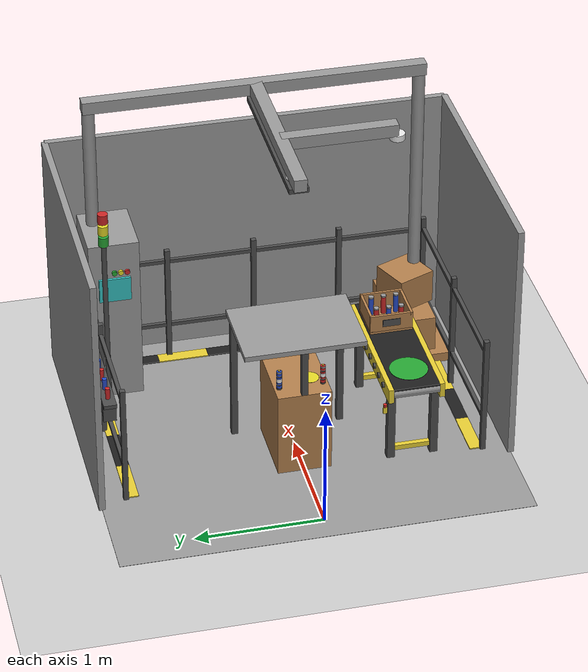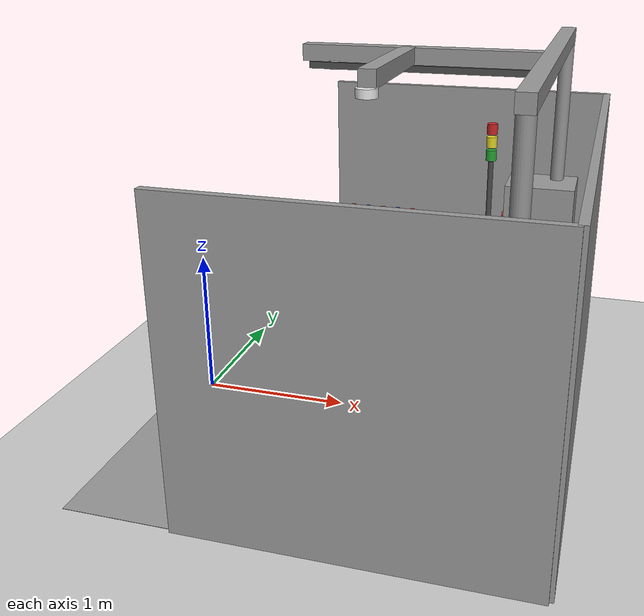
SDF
<?xml version="1.0" ?>
<sdf version="1.4">
  <world name="bimanual_manipulation_world">

    <physics type="ode">
      <gravity>0 0 -9.81</gravity>
      <ode>
        <solver>
          <type>quick</type>
          <iters>150</iters>
          <sor>1.3</sor>
        </solver>
        <constraints>
          <cfm>0.0</cfm>
          <erp>0.5</erp>
          <contact_max_correcting_vel>2.0</contact_max_correcting_vel>
          <contact_surface_layer>0.001</contact_surface_layer>
        </constraints>
      </ode>
      <real_time_update_rate>1000</real_time_update_rate>
      <max_step_size>0.001</max_step_size>
    </physics>

    <gui fullscreen="0">
      <camera name="user_camera">
        <pose>-1.50 0.00 1.85 0 0.41 0.00</pose>
        <view_controller>orbit</view_controller>
      </camera>
    </gui>

    <plugin name="ros2_linkattacher" filename="libgazebo_link_attacher.so"/>

    <!-- Standard illumination and ground -->
    <include><uri>model://sun</uri></include>
    <include><uri>model://ground_plane</uri></include>

    <model name="work_table">
      <static>true</static>
      <pose>0.940 0.0 0.35 0 0 0</pose>
      <link name="link">
        <collision name="col">
          <geometry><box><size>0.6 0.42 0.7</size></box></geometry>
          <surface>
            <contact>
              <ode>
                <kp>1000000</kp>
                <kd>100</kd>
                <max_vel>0.5</max_vel>
                <min_depth>0.001</min_depth>
              </ode>
            </contact>
            <friction><ode><mu>0.8</mu><mu2>0.8</mu2></ode></friction>
          </surface>
        </collision>
        <visual name="vis">
          <geometry><box><size>0.6 0.42 0.7</size></box></geometry>
          <material>
            <script>
              <uri>file://media/materials/scripts/gazebo.material</uri>
              <name>Gazebo/Wood</name>
            </script>
          </material>
        </visual>
      </link>
    </model>

    <model name="placement_area">
      <static>true</static>
      <pose>0.86 -0.09 0.701 0 0 0</pose>
      <link name="link">
        <visual name="vis">
          <geometry><cylinder><radius>0.07</radius><length>0.002</length></cylinder></geometry>
          <material><script><uri>file://media/materials/scripts/gazebo.material</uri><name>Gazebo/Yellow</name></script></material>
        </visual>
      </link>
    </model>

    <!-- FINAL platform (green): sits on the conveyor belt, inside its
         [-1.03,-0.67] width with a 0.03 m margin each side, 0.25 m from the
         belt's near edge. -->
    <model name="placement_area_final">
      <static>true</static>
      <pose>0.800 -0.85 0.701 0 0 0</pose>
      <link name="link">
        <visual name="vis">
          <geometry><cylinder><radius>0.15</radius><length>0.002</length></cylinder></geometry>
          <material><script><uri>file://media/materials/scripts/gazebo.material</uri><name>Gazebo/Green</name></script></material>
        </visual>
      </link>
    </model>

    <model name="red_cylinder">
      <static>false</static>
      <pose>0.770 -0.17 0.780 0 0 0</pose>
      <link name="link">
        <inertial>
          <pose>0 0 0 0 0 0</pose>
          <mass>0.15</mass>
          <inertia>
            <ixx>0.000309</ixx>
            <iyy>0.000309</iyy>
            <izz>0.000030</izz>
            <ixy>0</ixy><ixz>0</ixz><iyz>0</iyz>
          </inertia>
        </inertial>
        <collision name="col">
          <geometry><cylinder><radius>0.02</radius><length>0.16</length></cylinder></geometry>
          <surface>
            <contact>
              <ode>
                <soft_cfm>0.0</soft_cfm>
                <soft_erp>0.5</soft_erp>
                <kp>20000</kp>
                <kd>50</kd>
                <max_vel>1.0</max_vel>
                <min_depth>0.001</min_depth>
              </ode>
            </contact>
            <friction><ode><mu>0.6</mu><mu2>0.6</mu2></ode></friction>
          </surface>
        </collision>
        <visual name="vis">
          <geometry><cylinder><radius>0.02</radius><length>0.16</length></cylinder></geometry>
          <material><script><uri>file://media/materials/scripts/gazebo.material</uri><name>Gazebo/Red</name></script></material>
        </visual>

        <visual name="cap_top">
          <pose>0 0 0.0725 0 0 0</pose>
          <geometry><cylinder><radius>0.0205</radius><length>0.0149</length></cylinder></geometry>
          <material><script><uri>file://media/materials/scripts/gazebo.material</uri><name>Gazebo/Grey</name></script></material>
        </visual>
        <visual name="terminal_nub">
          <pose>0 0 0.0843 0 0 0</pose>
          <geometry><cylinder><radius>0.008</radius><length>0.0085</length></cylinder></geometry>
          <material><script><uri>file://media/materials/scripts/gazebo.material</uri><name>Gazebo/Gold</name></script></material>
        </visual>
        <visual name="cap_bottom">
          <pose>0 0 -0.0736 0 0 0</pose>
          <geometry><cylinder><radius>0.0205</radius><length>0.0128</length></cylinder></geometry>
          <material><script><uri>file://media/materials/scripts/gazebo.material</uri><name>Gazebo/DarkGrey</name></script></material>
        </visual>
        <visual name="label_band_top">
          <pose>0 0 0.0373 0 0 0</pose>
          <geometry><cylinder><radius>0.0206</radius><length>0.0107</length></cylinder></geometry>
          <material><script><uri>file://media/materials/scripts/gazebo.material</uri><name>Gazebo/FlatBlack</name></script></material>
        </visual>
        <visual name="label_band_bottom">
          <pose>0 0 -0.0373 0 0 0</pose>
          <geometry><cylinder><radius>0.0206</radius><length>0.0107</length></cylinder></geometry>
          <material><script><uri>file://media/materials/scripts/gazebo.material</uri><name>Gazebo/FlatBlack</name></script></material>
        </visual>
        <visual name="label_patch">
          <pose>0 0 0.0 0 0 0</pose>
          <geometry><cylinder><radius>0.0207</radius><length>0.0320</length></cylinder></geometry>
          <material><script><uri>file://media/materials/scripts/gazebo.material</uri><name>Gazebo/White</name></script></material>
        </visual>
      </link>
    </model>

    <model name="blue_cylinder">
      <static>false</static>
      <pose>0.770 0.17 0.780 0 0 0</pose>
      <link name="link">
        <inertial>
          <pose>0 0 0 0 0 0</pose>
          <mass>0.15</mass>
          <inertia>
            <ixx>0.000309</ixx>
            <iyy>0.000309</iyy>
            <izz>0.000030</izz>
            <ixy>0</ixy><ixz>0</ixz><iyz>0</iyz>
          </inertia>
        </inertial>
        <collision name="col">
          <geometry><cylinder><radius>0.02</radius><length>0.16</length></cylinder></geometry>
          <surface>
            <contact>
              <ode>
                <soft_cfm>0.0</soft_cfm>
                <soft_erp>0.5</soft_erp>
                <kp>20000</kp>
                <kd>50</kd>
                <max_vel>1.0</max_vel>
                <min_depth>0.001</min_depth>
              </ode>
            </contact>
            <friction><ode><mu>0.6</mu><mu2>0.6</mu2></ode></friction>
          </surface>
        </collision>
        <visual name="vis">
          <geometry><cylinder><radius>0.02</radius><length>0.16</length></cylinder></geometry>
          <material><script><uri>file://media/materials/scripts/gazebo.material</uri><name>Gazebo/Blue</name></script></material>
        </visual>

        <!-- Battery-look details (visual only): same accent styling as
             red_cylinder; only the body color differs. -->
        <visual name="cap_top">
          <pose>0 0 0.0725 0 0 0</pose>
          <geometry><cylinder><radius>0.0205</radius><length>0.0149</length></cylinder></geometry>
          <material><script><uri>file://media/materials/scripts/gazebo.material</uri><name>Gazebo/Grey</name></script></material>
        </visual>
        <visual name="terminal_nub">
          <pose>0 0 0.0843 0 0 0</pose>
          <geometry><cylinder><radius>0.008</radius><length>0.0085</length></cylinder></geometry>
          <material><script><uri>file://media/materials/scripts/gazebo.material</uri><name>Gazebo/Gold</name></script></material>
        </visual>
        <visual name="cap_bottom">
          <pose>0 0 -0.0736 0 0 0</pose>
          <geometry><cylinder><radius>0.0205</radius><length>0.0128</length></cylinder></geometry>
          <material><script><uri>file://media/materials/scripts/gazebo.material</uri><name>Gazebo/DarkGrey</name></script></material>
        </visual>
        <visual name="label_band_top">
          <pose>0 0 0.0373 0 0 0</pose>
          <geometry><cylinder><radius>0.0206</radius><length>0.0107</length></cylinder></geometry>
          <material><script><uri>file://media/materials/scripts/gazebo.material</uri><name>Gazebo/FlatBlack</name></script></material>
        </visual>
        <visual name="label_band_bottom">
          <pose>0 0 -0.0373 0 0 0</pose>
          <geometry><cylinder><radius>0.0206</radius><length>0.0107</length></cylinder></geometry>
          <material><script><uri>file://media/materials/scripts/gazebo.material</uri><name>Gazebo/FlatBlack</name></script></material>
        </visual>
        <visual name="label_patch">
          <pose>0 0 0.0 0 0 0</pose>
          <geometry><cylinder><radius>0.0207</radius><length>0.0320</length></cylinder></geometry>
          <material><script><uri>file://media/materials/scripts/gazebo.material</uri><name>Gazebo/White</name></script></material>
        </visual>
      </link>
    </model>

    <model name="storage_rack">
      <static>true</static>
      <pose>0 0 0 0 0 0</pose>
      <link name="link">

        <!-- Horizontal shelf (ceiling over the cylinders), underside at z=1.10 -->
        <collision name="shelf_col">
          <pose>0.94 0.0 1.12 0 0 0</pose>
          <geometry><box><size>0.66 0.94 0.04</size></box></geometry>
        </collision>
        <visual name="shelf_vis">
          <pose>0.94 0.0 1.12 0 0 0</pose>
          <geometry><box><size>0.66 0.94 0.04</size></box></geometry>
          <material><script><uri>file://media/materials/scripts/gazebo.material</uri><name>Gazebo/Grey</name></script></material>
        </visual>

        <collision name="leg_bl_col">
          <pose>1.24 -0.42 0.55 0 0 0</pose>
          <geometry><box><size>0.05 0.05 1.10</size></box></geometry>
        </collision>
        <visual name="leg_bl_vis">
          <pose>1.24 -0.42 0.55 0 0 0</pose>
          <geometry><box><size>0.05 0.05 1.10</size></box></geometry>
          <material><script><uri>file://media/materials/scripts/gazebo.material</uri><name>Gazebo/DarkGrey</name></script></material>
        </visual>

        <collision name="leg_br_col">
          <pose>1.24 0.42 0.55 0 0 0</pose>
          <geometry><box><size>0.05 0.05 1.10</size></box></geometry>
        </collision>
        <visual name="leg_br_vis">
          <pose>1.24 0.42 0.55 0 0 0</pose>
          <geometry><box><size>0.05 0.05 1.10</size></box></geometry>
          <material><script><uri>file://media/materials/scripts/gazebo.material</uri><name>Gazebo/DarkGrey</name></script></material>
        </visual>

        <collision name="leg_fc_col">
          <pose>0.665 0.0 0.90 0 0 0</pose>
          <geometry><box><size>0.05 0.05 0.40</size></box></geometry>
        </collision>
        <visual name="leg_fc_vis">
          <pose>0.665 0.0 0.90 0 0 0</pose>
          <geometry><box><size>0.05 0.05 0.40</size></box></geometry>
          <material><script><uri>file://media/materials/scripts/gazebo.material</uri><name>Gazebo/DarkGrey</name></script></material>
        </visual>

      </link>
    </model>

    <model name="conveyor">
      <static>true</static>
      <pose>0 0 0 0 0 0</pose>
      <link name="link">

        <collision name="col">
          <pose>1.15 -0.85 0.35 0 0 0</pose>
          <geometry><box><size>1.20 0.48 0.70</size></box></geometry>
          <surface>
            <contact>
              <ode>
                <kp>1000000</kp>
                <kd>100</kd>
                <max_vel>0.5</max_vel>
                <min_depth>0.001</min_depth>
              </ode>
            </contact>
            <friction><ode><mu>0.8</mu><mu2>0.8</mu2></ode></friction>
          </surface>
        </collision>

        <visual name="belt_slab">
          <pose>1.15 -0.85 0.690 0 0 0</pose>
          <geometry><box><size>1.20 0.36 0.02</size></box></geometry>
          <material><script><uri>file://media/materials/scripts/gazebo.material</uri><name>Gazebo/FlatBlack</name></script></material>
        </visual>

        <visual name="drum_near">
          <pose>0.585 -0.85 0.655 1.5708 0 0</pose>
          <geometry><cylinder><radius>0.045</radius><length>0.36</length></cylinder></geometry>
          <material><script><uri>file://media/materials/scripts/gazebo.material</uri><name>Gazebo/Grey</name></script></material>
        </visual>
        <visual name="drum_far">
          <pose>1.715 -0.85 0.655 1.5708 0 0</pose>
          <geometry><cylinder><radius>0.045</radius><length>0.36</length></cylinder></geometry>
          <material><script><uri>file://media/materials/scripts/gazebo.material</uri><name>Gazebo/Grey</name></script></material>
        </visual>

        <visual name="frame_near">
          <pose>1.15 -0.65 0.640 0 0 0</pose>
          <geometry><box><size>1.20 0.04 0.12</size></box></geometry>
          <material><script><uri>file://media/materials/scripts/gazebo.material</uri><name>Gazebo/ZincYellow</name></script></material>
        </visual>
        <visual name="frame_far">
          <pose>1.15 -1.05 0.640 0 0 0</pose>
          <geometry><box><size>1.20 0.04 0.12</size></box></geometry>
          <material><script><uri>file://media/materials/scripts/gazebo.material</uri><name>Gazebo/ZincYellow</name></script></material>
        </visual>

        <!-- Roller ends through the near frame (belt-side face), 8x spaced 0.13 m. -->
        <visual name="roller_1">
          <pose>0.70 -0.625 0.655 1.5708 0 0</pose>
          <geometry><cylinder><radius>0.022</radius><length>0.02</length></cylinder></geometry>
          <material><script><uri>file://media/materials/scripts/gazebo.material</uri><name>Gazebo/DarkGrey</name></script></material>
        </visual>
        <visual name="roller_2">
          <pose>0.83 -0.625 0.655 1.5708 0 0</pose>
          <geometry><cylinder><radius>0.022</radius><length>0.02</length></cylinder></geometry>
          <material><script><uri>file://media/materials/scripts/gazebo.material</uri><name>Gazebo/DarkGrey</name></script></material>
        </visual>
        <visual name="roller_3">
          <pose>0.96 -0.625 0.655 1.5708 0 0</pose>
          <geometry><cylinder><radius>0.022</radius><length>0.02</length></cylinder></geometry>
          <material><script><uri>file://media/materials/scripts/gazebo.material</uri><name>Gazebo/DarkGrey</name></script></material>
        </visual>
        <visual name="roller_4">
          <pose>1.09 -0.625 0.655 1.5708 0 0</pose>
          <geometry><cylinder><radius>0.022</radius><length>0.02</length></cylinder></geometry>
          <material><script><uri>file://media/materials/scripts/gazebo.material</uri><name>Gazebo/DarkGrey</name></script></material>
        </visual>
        <visual name="roller_5">
          <pose>1.22 -0.625 0.655 1.5708 0 0</pose>
          <geometry><cylinder><radius>0.022</radius><length>0.02</length></cylinder></geometry>
          <material><script><uri>file://media/materials/scripts/gazebo.material</uri><name>Gazebo/DarkGrey</name></script></material>
        </visual>
        <visual name="roller_6">
          <pose>1.35 -0.625 0.655 1.5708 0 0</pose>
          <geometry><cylinder><radius>0.022</radius><length>0.02</length></cylinder></geometry>
          <material><script><uri>file://media/materials/scripts/gazebo.material</uri><name>Gazebo/DarkGrey</name></script></material>
        </visual>
        <visual name="roller_7">
          <pose>1.48 -0.625 0.655 1.5708 0 0</pose>
          <geometry><cylinder><radius>0.022</radius><length>0.02</length></cylinder></geometry>
          <material><script><uri>file://media/materials/scripts/gazebo.material</uri><name>Gazebo/DarkGrey</name></script></material>
        </visual>
        <visual name="roller_8">
          <pose>1.61 -0.625 0.655 1.5708 0 0</pose>
          <geometry><cylinder><radius>0.022</radius><length>0.02</length></cylinder></geometry>
          <material><script><uri>file://media/materials/scripts/gazebo.material</uri><name>Gazebo/DarkGrey</name></script></material>
        </visual>

        <!-- 4 legs: top (z=0.58) flush with the side frames' underside. -->
        <visual name="leg_fl">
          <pose>0.67 -0.68 0.29 0 0 0</pose>
          <geometry><box><size>0.06 0.06 0.58</size></box></geometry>
          <material><script><uri>file://media/materials/scripts/gazebo.material</uri><name>Gazebo/DarkGrey</name></script></material>
        </visual>
        <visual name="leg_fr">
          <pose>0.67 -1.02 0.29 0 0 0</pose>
          <geometry><box><size>0.06 0.06 0.58</size></box></geometry>
          <material><script><uri>file://media/materials/scripts/gazebo.material</uri><name>Gazebo/DarkGrey</name></script></material>
        </visual>
        <visual name="leg_bl">
          <pose>1.63 -0.68 0.29 0 0 0</pose>
          <geometry><box><size>0.06 0.06 0.58</size></box></geometry>
          <material><script><uri>file://media/materials/scripts/gazebo.material</uri><name>Gazebo/DarkGrey</name></script></material>
        </visual>
        <visual name="leg_br">
          <pose>1.63 -1.02 0.29 0 0 0</pose>
          <geometry><box><size>0.06 0.06 0.58</size></box></geometry>
          <material><script><uri>file://media/materials/scripts/gazebo.material</uri><name>Gazebo/DarkGrey</name></script></material>
        </visual>

        <visual name="brace_near">
          <pose>0.67 -0.85 0.08 0 0 0</pose>
          <geometry><box><size>0.04 0.36 0.04</size></box></geometry>
          <material><script><uri>file://media/materials/scripts/gazebo.material</uri><name>Gazebo/ZincYellow</name></script></material>
        </visual>
        <visual name="brace_far">
          <pose>1.63 -0.85 0.08 0 0 0</pose>
          <geometry><box><size>0.04 0.36 0.04</size></box></geometry>
          <material><script><uri>file://media/materials/scripts/gazebo.material</uri><name>Gazebo/ZincYellow</name></script></material>
        </visual>

        <visual name="motor_housing">
          <pose>1.65 -0.85 0.60 0 0 0</pose>
          <geometry><box><size>0.10 0.14 0.10</size></box></geometry>
          <material><script><uri>file://media/materials/scripts/gazebo.material</uri><name>Gazebo/DarkGrey</name></script></material>
        </visual>
        <visual name="motor_gearbox">
          <pose>1.58 -0.85 0.60 0 1.5708 0</pose>
          <geometry><cylinder><radius>0.05</radius><length>0.08</length></cylinder></geometry>
          <material><script><uri>file://media/materials/scripts/gazebo.material</uri><name>Gazebo/Grey</name></script></material>
        </visual>

        <visual name="estop_plate">
          <pose>0.67 -0.645 0.45 0 0 0</pose>
          <geometry><box><size>0.015 0.05 0.08</size></box></geometry>
          <material><script><uri>file://media/materials/scripts/gazebo.material</uri><name>Gazebo/ZincYellow</name></script></material>
        </visual>
        <visual name="estop_button">
          <pose>0.67 -0.635 0.48 0 0 0</pose>
          <geometry><cylinder><radius>0.015</radius><length>0.02</length></cylinder></geometry>
          <material><script><uri>file://media/materials/scripts/gazebo.material</uri><name>Gazebo/Red</name></script></material>
        </visual>

      </link>
    </model>

    <model name="battery_chest">
      <static>true</static>
      <pose>1.48 -0.85 0 0 0 0</pose>
      <link name="link">
        <visual name="chest_floor">
          <pose>0 0 0.710 0 0 0</pose>
          <geometry><box><size>0.34 0.34 0.02</size></box></geometry>
          <material><script><uri>file://media/materials/scripts/gazebo.material</uri><name>Gazebo/Wood</name></script></material>
        </visual>
        <visual name="wall_far">
          <pose>0.16 0 0.790 0 0 0</pose>
          <geometry><box><size>0.02 0.34 0.14</size></box></geometry>
          <material><script><uri>file://media/materials/scripts/gazebo.material</uri><name>Gazebo/Wood</name></script></material>
        </visual>
        <visual name="wall_near">
          <pose>-0.16 0 0.790 0 0 0</pose>
          <geometry><box><size>0.02 0.34 0.14</size></box></geometry>
          <material><script><uri>file://media/materials/scripts/gazebo.material</uri><name>Gazebo/Wood</name></script></material>
        </visual>
        <visual name="wall_outer">
          <pose>0 -0.16 0.790 0 0 0</pose>
          <geometry><box><size>0.34 0.02 0.14</size></box></geometry>
          <material><script><uri>file://media/materials/scripts/gazebo.material</uri><name>Gazebo/Wood</name></script></material>
        </visual>
        <visual name="wall_inner">
          <pose>0 0.16 0.790 0 0 0</pose>
          <geometry><box><size>0.34 0.02 0.14</size></box></geometry>
          <material><script><uri>file://media/materials/scripts/gazebo.material</uri><name>Gazebo/Wood</name></script></material>
        </visual>

        <!-- Generic stock placard: mixed batteries, no single line to color-code. -->
        <visual name="label_plate">
          <pose>-0.172 0 0.790 0 0 0</pose>
          <geometry><box><size>0.005 0.14 0.06</size></box></geometry>
          <material><script><uri>file://media/materials/scripts/gazebo.material</uri><name>Gazebo/DarkGrey</name></script></material>
        </visual>

        <!-- Stock: 3 red + 3 blue batteries standing on the crate floor, tops
             peeking just above the 0.14 m rim. -->
        <visual name="battery_1"><pose>-0.08 -0.10 0.795 0 0 0</pose><geometry><cylinder><radius>0.02</radius><length>0.15</length></cylinder></geometry><material><script><uri>file://media/materials/scripts/gazebo.material</uri><name>Gazebo/Red</name></script></material></visual>
        <visual name="battery_1_cap"><pose>-0.08 -0.10 0.876 0 0 0</pose><geometry><cylinder><radius>0.021</radius><length>0.012</length></cylinder></geometry><material><script><uri>file://media/materials/scripts/gazebo.material</uri><name>Gazebo/Grey</name></script></material></visual>
        <visual name="battery_2"><pose>-0.08 0.00 0.795 0 0 0</pose><geometry><cylinder><radius>0.02</radius><length>0.15</length></cylinder></geometry><material><script><uri>file://media/materials/scripts/gazebo.material</uri><name>Gazebo/Blue</name></script></material></visual>
        <visual name="battery_2_cap"><pose>-0.08 0.00 0.876 0 0 0</pose><geometry><cylinder><radius>0.021</radius><length>0.012</length></cylinder></geometry><material><script><uri>file://media/materials/scripts/gazebo.material</uri><name>Gazebo/Grey</name></script></material></visual>
        <visual name="battery_3"><pose>-0.08 0.10 0.795 0 0 0</pose><geometry><cylinder><radius>0.02</radius><length>0.15</length></cylinder></geometry><material><script><uri>file://media/materials/scripts/gazebo.material</uri><name>Gazebo/Red</name></script></material></visual>
        <visual name="battery_3_cap"><pose>-0.08 0.10 0.876 0 0 0</pose><geometry><cylinder><radius>0.021</radius><length>0.012</length></cylinder></geometry><material><script><uri>file://media/materials/scripts/gazebo.material</uri><name>Gazebo/Grey</name></script></material></visual>
        <visual name="battery_4"><pose>0.08 -0.10 0.795 0 0 0</pose><geometry><cylinder><radius>0.02</radius><length>0.15</length></cylinder></geometry><material><script><uri>file://media/materials/scripts/gazebo.material</uri><name>Gazebo/Blue</name></script></material></visual>
        <visual name="battery_4_cap"><pose>0.08 -0.10 0.876 0 0 0</pose><geometry><cylinder><radius>0.021</radius><length>0.012</length></cylinder></geometry><material><script><uri>file://media/materials/scripts/gazebo.material</uri><name>Gazebo/Grey</name></script></material></visual>
        <visual name="battery_5"><pose>0.08 0.00 0.795 0 0 0</pose><geometry><cylinder><radius>0.02</radius><length>0.15</length></cylinder></geometry><material><script><uri>file://media/materials/scripts/gazebo.material</uri><name>Gazebo/Red</name></script></material></visual>
        <visual name="battery_5_cap"><pose>0.08 0.00 0.876 0 0 0</pose><geometry><cylinder><radius>0.021</radius><length>0.012</length></cylinder></geometry><material><script><uri>file://media/materials/scripts/gazebo.material</uri><name>Gazebo/Grey</name></script></material></visual>
        <visual name="battery_6"><pose>0.08 0.10 0.795 0 0 0</pose><geometry><cylinder><radius>0.02</radius><length>0.15</length></cylinder></geometry><material><script><uri>file://media/materials/scripts/gazebo.material</uri><name>Gazebo/Blue</name></script></material></visual>
        <visual name="battery_6_cap"><pose>0.08 0.10 0.876 0 0 0</pose><geometry><cylinder><radius>0.021</radius><length>0.012</length></cylinder></geometry><material><script><uri>file://media/materials/scripts/gazebo.material</uri><name>Gazebo/Grey</name></script></material></visual>
      </link>
    </model>

    <model name="cell_floor">
      <static>true</static>
      <pose>1.2 0.0 0.001 0 0 0</pose>
      <link name="link">
        <visual name="vis">
          <geometry><box><size>2.8 3.2 0.002</size></box></geometry>
          <material><script><uri>file://media/materials/scripts/gazebo.material</uri><name>Gazebo/Grey</name></script></material>
        </visual>
      </link>
    </model>

    <!-- Hazard-stripe border along the fenced perimeter (back/left/right; the
         front stays open, matching the fence). -->
    <model name="cell_hazard_stripes">
      <static>true</static>
      <pose>0 0 0.006 0 0 0</pose>
      <link name="link">
        <visual name="back_1"><pose>2.35 -1.00 0 0 0 0</pose><geometry><box><size>0.10 0.40 0.01</size></box></geometry><material><script><uri>file://media/materials/scripts/gazebo.material</uri><name>Gazebo/ZincYellow</name></script></material></visual>
        <visual name="back_2"><pose>2.35 -0.60 0 0 0 0</pose><geometry><box><size>0.10 0.40 0.01</size></box></geometry><material><script><uri>file://media/materials/scripts/gazebo.material</uri><name>Gazebo/FlatBlack</name></script></material></visual>
        <visual name="back_3"><pose>2.35 -0.20 0 0 0 0</pose><geometry><box><size>0.10 0.40 0.01</size></box></geometry><material><script><uri>file://media/materials/scripts/gazebo.material</uri><name>Gazebo/ZincYellow</name></script></material></visual>
        <visual name="back_4"><pose>2.35 0.20 0 0 0 0</pose><geometry><box><size>0.10 0.40 0.01</size></box></geometry><material><script><uri>file://media/materials/scripts/gazebo.material</uri><name>Gazebo/FlatBlack</name></script></material></visual>
        <visual name="back_5"><pose>2.35 0.60 0 0 0 0</pose><geometry><box><size>0.10 0.40 0.01</size></box></geometry><material><script><uri>file://media/materials/scripts/gazebo.material</uri><name>Gazebo/ZincYellow</name></script></material></visual>
        <visual name="back_6"><pose>2.35 1.00 0 0 0 0</pose><geometry><box><size>0.10 0.40 0.01</size></box></geometry><material><script><uri>file://media/materials/scripts/gazebo.material</uri><name>Gazebo/FlatBlack</name></script></material></visual>

        <visual name="left_1"><pose>0.80 1.35 0 0 0 0</pose><geometry><box><size>0.40 0.10 0.01</size></box></geometry><material><script><uri>file://media/materials/scripts/gazebo.material</uri><name>Gazebo/ZincYellow</name></script></material></visual>
        <visual name="left_2"><pose>1.20 1.35 0 0 0 0</pose><geometry><box><size>0.40 0.10 0.01</size></box></geometry><material><script><uri>file://media/materials/scripts/gazebo.material</uri><name>Gazebo/FlatBlack</name></script></material></visual>
        <visual name="left_3"><pose>1.60 1.35 0 0 0 0</pose><geometry><box><size>0.40 0.10 0.01</size></box></geometry><material><script><uri>file://media/materials/scripts/gazebo.material</uri><name>Gazebo/ZincYellow</name></script></material></visual>
        <visual name="left_4"><pose>2.00 1.35 0 0 0 0</pose><geometry><box><size>0.40 0.10 0.01</size></box></geometry><material><script><uri>file://media/materials/scripts/gazebo.material</uri><name>Gazebo/FlatBlack</name></script></material></visual>

        <visual name="right_1"><pose>0.80 -1.35 0 0 0 0</pose><geometry><box><size>0.40 0.10 0.01</size></box></geometry><material><script><uri>file://media/materials/scripts/gazebo.material</uri><name>Gazebo/ZincYellow</name></script></material></visual>
        <visual name="right_2"><pose>1.20 -1.35 0 0 0 0</pose><geometry><box><size>0.40 0.10 0.01</size></box></geometry><material><script><uri>file://media/materials/scripts/gazebo.material</uri><name>Gazebo/FlatBlack</name></script></material></visual>
        <visual name="right_3"><pose>1.60 -1.35 0 0 0 0</pose><geometry><box><size>0.40 0.10 0.01</size></box></geometry><material><script><uri>file://media/materials/scripts/gazebo.material</uri><name>Gazebo/ZincYellow</name></script></material></visual>
        <visual name="right_4"><pose>2.00 -1.35 0 0 0 0</pose><geometry><box><size>0.40 0.10 0.01</size></box></geometry><material><script><uri>file://media/materials/scripts/gazebo.material</uri><name>Gazebo/FlatBlack</name></script></material></visual>
      </link>
    </model>

    <model name="safety_fence">
      <static>true</static>
      <pose>0 0 0.5 0 0 0</pose>
      <link name="link">
        <visual name="post_back_1"><pose>2.40 -1.40 0 0 0 0</pose><geometry><box><size>0.04 0.04 1.0</size></box></geometry><material><script><uri>file://media/materials/scripts/gazebo.material</uri><name>Gazebo/DarkGrey</name></script></material></visual>
        <visual name="post_back_2"><pose>2.40 -0.70 0 0 0 0</pose><geometry><box><size>0.04 0.04 1.0</size></box></geometry><material><script><uri>file://media/materials/scripts/gazebo.material</uri><name>Gazebo/DarkGrey</name></script></material></visual>
        <visual name="post_back_3"><pose>2.40 0.00 0 0 0 0</pose><geometry><box><size>0.04 0.04 1.0</size></box></geometry><material><script><uri>file://media/materials/scripts/gazebo.material</uri><name>Gazebo/DarkGrey</name></script></material></visual>
        <visual name="post_back_4"><pose>2.40 0.70 0 0 0 0</pose><geometry><box><size>0.04 0.04 1.0</size></box></geometry><material><script><uri>file://media/materials/scripts/gazebo.material</uri><name>Gazebo/DarkGrey</name></script></material></visual>
        <visual name="post_back_5"><pose>2.40 1.40 0 0 0 0</pose><geometry><box><size>0.04 0.04 1.0</size></box></geometry><material><script><uri>file://media/materials/scripts/gazebo.material</uri><name>Gazebo/DarkGrey</name></script></material></visual>
        <visual name="post_left_1"><pose>0.60 1.40 0 0 0 0</pose><geometry><box><size>0.04 0.04 1.0</size></box></geometry><material><script><uri>file://media/materials/scripts/gazebo.material</uri><name>Gazebo/DarkGrey</name></script></material></visual>
        <visual name="post_left_2"><pose>1.50 1.40 0 0 0 0</pose><geometry><box><size>0.04 0.04 1.0</size></box></geometry><material><script><uri>file://media/materials/scripts/gazebo.material</uri><name>Gazebo/DarkGrey</name></script></material></visual>
        <visual name="post_right_1"><pose>0.60 -1.40 0 0 0 0</pose><geometry><box><size>0.04 0.04 1.0</size></box></geometry><material><script><uri>file://media/materials/scripts/gazebo.material</uri><name>Gazebo/DarkGrey</name></script></material></visual>
        <visual name="post_right_2"><pose>1.50 -1.40 0 0 0 0</pose><geometry><box><size>0.04 0.04 1.0</size></box></geometry><material><script><uri>file://media/materials/scripts/gazebo.material</uri><name>Gazebo/DarkGrey</name></script></material></visual>

        <visual name="rail_back_top"><pose>2.40 0.0 0.4 0 0 0</pose><geometry><box><size>0.03 2.80 0.03</size></box></geometry><material><script><uri>file://media/materials/scripts/gazebo.material</uri><name>Gazebo/DarkGrey</name></script></material></visual>
        <visual name="rail_back_bottom"><pose>2.40 0.0 -0.2 0 0 0</pose><geometry><box><size>0.03 2.80 0.03</size></box></geometry><material><script><uri>file://media/materials/scripts/gazebo.material</uri><name>Gazebo/DarkGrey</name></script></material></visual>
        <visual name="rail_left_top"><pose>1.50 1.40 0.4 0 0 0</pose><geometry><box><size>1.80 0.03 0.03</size></box></geometry><material><script><uri>file://media/materials/scripts/gazebo.material</uri><name>Gazebo/DarkGrey</name></script></material></visual>
        <visual name="rail_left_bottom"><pose>1.50 1.40 -0.2 0 0 0</pose><geometry><box><size>1.80 0.03 0.03</size></box></geometry><material><script><uri>file://media/materials/scripts/gazebo.material</uri><name>Gazebo/DarkGrey</name></script></material></visual>
        <visual name="rail_right_top"><pose>1.50 -1.40 0.4 0 0 0</pose><geometry><box><size>1.80 0.03 0.03</size></box></geometry><material><script><uri>file://media/materials/scripts/gazebo.material</uri><name>Gazebo/DarkGrey</name></script></material></visual>
        <visual name="rail_right_bottom"><pose>1.50 -1.40 -0.2 0 0 0</pose><geometry><box><size>1.80 0.03 0.03</size></box></geometry><material><script><uri>file://media/materials/scripts/gazebo.material</uri><name>Gazebo/DarkGrey</name></script></material></visual>
      </link>
    </model>

    <model name="cell_walls">
      <static>true</static>
      <pose>0 0 1.0 0 0 0</pose>
      <link name="link">
        <visual name="wall_back"><pose>2.60 0.0 0 0 0 0</pose><geometry><box><size>0.05 3.2 2.0</size></box></geometry><material><script><uri>file://media/materials/scripts/gazebo.material</uri><name>Gazebo/Grey</name></script></material></visual>
        <visual name="wall_left"><pose>1.55 1.60 0 0 0 0</pose><geometry><box><size>2.10 0.05 2.0</size></box></geometry><material><script><uri>file://media/materials/scripts/gazebo.material</uri><name>Gazebo/Grey</name></script></material></visual>
        <visual name="wall_right"><pose>1.55 -1.60 0 0 0 0</pose><geometry><box><size>2.10 0.05 2.0</size></box></geometry><material><script><uri>file://media/materials/scripts/gazebo.material</uri><name>Gazebo/Grey</name></script></material></visual>
      </link>
    </model>

    <model name="overhead_gantry">
      <static>true</static>
      <pose>0 0 0 0 0 0</pose>
      <link name="link">
        <visual name="column_left">
          <pose>2.30 1.30 1.2 0 0 0</pose>
          <geometry><cylinder><radius>0.05</radius><length>2.4</length></cylinder></geometry>
          <material><script><uri>file://media/materials/scripts/gazebo.material</uri><name>Gazebo/Grey</name></script></material>
        </visual>
        <visual name="column_right">
          <pose>2.30 -1.30 1.2 0 0 0</pose>
          <geometry><cylinder><radius>0.05</radius><length>2.4</length></cylinder></geometry>
          <material><script><uri>file://media/materials/scripts/gazebo.material</uri><name>Gazebo/Grey</name></script></material>
        </visual>
        <visual name="beam_back">
          <pose>2.30 0.0 2.45 0 0 0</pose>
          <geometry><box><size>0.10 2.70 0.10</size></box></geometry>
          <material><script><uri>file://media/materials/scripts/gazebo.material</uri><name>Gazebo/Grey</name></script></material>
        </visual>
        <visual name="beam_centerline">
          <pose>1.55 0.0 2.45 0 0 0</pose>
          <geometry><box><size>1.50 0.10 0.10</size></box></geometry>
          <material><script><uri>file://media/materials/scripts/gazebo.material</uri><name>Gazebo/Grey</name></script></material>
        </visual>
        <visual name="beam_branch_conveyor">
          <pose>1.45 -0.45 2.45 0 0 0</pose>
          <geometry><box><size>0.10 0.90 0.10</size></box></geometry>
          <material><script><uri>file://media/materials/scripts/gazebo.material</uri><name>Gazebo/Grey</name></script></material>
        </visual>
        <visual name="cable_tray">
          <pose>1.55 0.0 2.38 0 0 0</pose>
          <geometry><box><size>1.40 0.15 0.04</size></box></geometry>
          <material><script><uri>file://media/materials/scripts/gazebo.material</uri><name>Gazebo/DarkGrey</name></script></material>
        </visual>
        <visual name="light_fixture_table">
          <pose>1.00 0.0 2.38 0 0 0</pose>
          <geometry><cylinder><radius>0.06</radius><length>0.05</length></cylinder></geometry>
          <material><script><uri>file://media/materials/scripts/gazebo.material</uri><name>Gazebo/WhiteGlow</name></script></material>
        </visual>
        <visual name="light_fixture_conveyor">
          <pose>1.45 -0.90 2.38 0 0 0</pose>
          <geometry><cylinder><radius>0.06</radius><length>0.05</length></cylinder></geometry>
          <material><script><uri>file://media/materials/scripts/gazebo.material</uri><name>Gazebo/WhiteGlow</name></script></material>
        </visual>
      </link>
    </model>

    <!-- Real point lights matching the fixture housings above (modest
         attenuation - meant to lift the render, not floodlight it). -->
    <light type="point" name="ceiling_light_table">
      <pose>1.00 0.0 2.30 0 0 0</pose>
      <diffuse>0.9 0.9 0.85 1</diffuse>
      <specular>0.2 0.2 0.2 1</specular>
      <attenuation>
        <range>10</range>
        <constant>0.4</constant>
        <linear>0.08</linear>
        <quadratic>0.01</quadratic>
      </attenuation>
      <cast_shadows>false</cast_shadows>
    </light>
    <light type="point" name="ceiling_light_conveyor">
      <pose>1.45 -0.90 2.30 0 0 0</pose>
      <diffuse>0.9 0.9 0.85 1</diffuse>
      <specular>0.2 0.2 0.2 1</specular>
      <attenuation>
        <range>10</range>
        <constant>0.4</constant>
        <linear>0.08</linear>
        <quadratic>0.01</quadratic>
      </attenuation>
      <cast_shadows>false</cast_shadows>
    </light>

    <!-- Control cabinet: body + HMI screen + 3 pilot lights. -->
    <model name="control_cabinet">
      <static>true</static>
      <pose>0 0 0 0 0 0</pose>
      <link name="link">
        <visual name="body">
          <pose>2.20 1.20 0.70 0 0 0</pose>
          <geometry><box><size>0.5 0.4 1.4</size></box></geometry>
          <material><script><uri>file://media/materials/scripts/gazebo.material</uri><name>Gazebo/Grey</name></script></material>
        </visual>
        <visual name="hmi_panel">
          <pose>1.94 1.20 1.00 0 0 0</pose>
          <geometry><box><size>0.02 0.25 0.20</size></box></geometry>
          <material><script><uri>file://media/materials/scripts/gazebo.material</uri><name>Gazebo/Turquoise</name></script></material>
        </visual>
        <visual name="indicator_red">
          <pose>1.94 1.10 1.15 0 1.5708 0</pose>
          <geometry><cylinder><radius>0.02</radius><length>0.02</length></cylinder></geometry>
          <material><script><uri>file://media/materials/scripts/gazebo.material</uri><name>Gazebo/RedGlow</name></script></material>
        </visual>
        <visual name="indicator_yellow">
          <pose>1.94 1.15 1.15 0 1.5708 0</pose>
          <geometry><cylinder><radius>0.02</radius><length>0.02</length></cylinder></geometry>
          <material><script><uri>file://media/materials/scripts/gazebo.material</uri><name>Gazebo/YellowGlow</name></script></material>
        </visual>
        <visual name="indicator_green">
          <pose>1.94 1.20 1.15 0 1.5708 0</pose>
          <geometry><cylinder><radius>0.02</radius><length>0.02</length></cylinder></geometry>
          <material><script><uri>file://media/materials/scripts/gazebo.material</uri><name>Gazebo/GreenGlow</name></script></material>
        </visual>
      </link>
    </model>

    <!-- Andon / stack tower light on a post. -->
    <model name="andon_tower">
      <static>true</static>
      <pose>0 0 0 0 0 0</pose>
      <link name="link">
        <visual name="post">
          <pose>1.80 1.30 0.75 0 0 0</pose>
          <geometry><cylinder><radius>0.02</radius><length>1.5</length></cylinder></geometry>
          <material><script><uri>file://media/materials/scripts/gazebo.material</uri><name>Gazebo/DarkGrey</name></script></material>
        </visual>
        <visual name="lens_green">
          <pose>1.80 1.30 1.55 0 0 0</pose>
          <geometry><cylinder><radius>0.04</radius><length>0.08</length></cylinder></geometry>
          <material><script><uri>file://media/materials/scripts/gazebo.material</uri><name>Gazebo/GreenGlow</name></script></material>
        </visual>
        <visual name="lens_yellow">
          <pose>1.80 1.30 1.65 0 0 0</pose>
          <geometry><cylinder><radius>0.04</radius><length>0.08</length></cylinder></geometry>
          <material><script><uri>file://media/materials/scripts/gazebo.material</uri><name>Gazebo/YellowGlow</name></script></material>
        </visual>
        <visual name="lens_red">
          <pose>1.80 1.30 1.75 0 0 0</pose>
          <geometry><cylinder><radius>0.04</radius><length>0.08</length></cylinder></geometry>
          <material><script><uri>file://media/materials/scripts/gazebo.material</uri><name>Gazebo/RedGlow</name></script></material>
        </visual>
      </link>
    </model>

    <!-- Pallet + crate stack (staging area). -->
    <model name="pallet_stack">
      <static>true</static>
      <pose>0 0 0 0 0 0</pose>
      <link name="link">
        <visual name="pallet">
          <pose>2.20 -1.20 0.04 0 0 0</pose>
          <geometry><box><size>0.8 0.6 0.08</size></box></geometry>
          <material><script><uri>file://media/materials/scripts/gazebo.material</uri><name>Gazebo/WoodPallet</name></script></material>
        </visual>
        <visual name="crate_1">
          <pose>2.05 -1.20 0.23 0 0 0</pose>
          <geometry><box><size>0.35 0.35 0.30</size></box></geometry>
          <material><script><uri>file://media/materials/scripts/gazebo.material</uri><name>Gazebo/Wood</name></script></material>
        </visual>
        <visual name="crate_2">
          <pose>2.35 -1.20 0.23 0 0 0</pose>
          <geometry><box><size>0.35 0.35 0.30</size></box></geometry>
          <material><script><uri>file://media/materials/scripts/gazebo.material</uri><name>Gazebo/Wood</name></script></material>
        </visual>
        <visual name="crate_top">
          <pose>2.20 -1.20 0.53 0 0 0.4</pose>
          <geometry><box><size>0.32 0.32 0.28</size></box></geometry>
          <material><script><uri>file://media/materials/scripts/gazebo.material</uri><name>Gazebo/Wood</name></script></material>
        </visual>
      </link>
    </model>

    <!-- Wall-mounted battery charging rack, echoing the Task-1 battery look. -->
    <model name="battery_charging_rack">
      <static>true</static>
      <pose>0 0 0 0 0 0</pose>
      <link name="link">
        <visual name="shelf">
          <pose>1.00 1.50 0.90 0 0 0</pose>
          <geometry><box><size>0.9 0.10 0.03</size></box></geometry>
          <material><script><uri>file://media/materials/scripts/gazebo.material</uri><name>Gazebo/DarkGrey</name></script></material>
        </visual>
        <visual name="bracket_left">
          <pose>0.60 1.50 0.825 0 0 0</pose>
          <geometry><box><size>0.03 0.10 0.15</size></box></geometry>
          <material><script><uri>file://media/materials/scripts/gazebo.material</uri><name>Gazebo/DarkGrey</name></script></material>
        </visual>
        <visual name="bracket_right">
          <pose>1.40 1.50 0.825 0 0 0</pose>
          <geometry><box><size>0.03 0.10 0.15</size></box></geometry>
          <material><script><uri>file://media/materials/scripts/gazebo.material</uri><name>Gazebo/DarkGrey</name></script></material>
        </visual>
        <visual name="battery_1">
          <pose>0.65 1.50 0.96 0 0 0</pose>
          <geometry><cylinder><radius>0.018</radius><length>0.09</length></cylinder></geometry>
          <material><script><uri>file://media/materials/scripts/gazebo.material</uri><name>Gazebo/Red</name></script></material>
        </visual>
        <visual name="battery_2">
          <pose>0.775 1.50 0.96 0 0 0</pose>
          <geometry><cylinder><radius>0.018</radius><length>0.09</length></cylinder></geometry>
          <material><script><uri>file://media/materials/scripts/gazebo.material</uri><name>Gazebo/Blue</name></script></material>
        </visual>
        <visual name="battery_3">
          <pose>0.90 1.50 0.96 0 0 0</pose>
          <geometry><cylinder><radius>0.018</radius><length>0.09</length></cylinder></geometry>
          <material><script><uri>file://media/materials/scripts/gazebo.material</uri><name>Gazebo/Red</name></script></material>
        </visual>
        <visual name="battery_4">
          <pose>1.025 1.50 0.96 0 0 0</pose>
          <geometry><cylinder><radius>0.018</radius><length>0.09</length></cylinder></geometry>
          <material><script><uri>file://media/materials/scripts/gazebo.material</uri><name>Gazebo/Blue</name></script></material>
        </visual>
        <visual name="battery_5">
          <pose>1.15 1.50 0.96 0 0 0</pose>
          <geometry><cylinder><radius>0.018</radius><length>0.09</length></cylinder></geometry>
          <material><script><uri>file://media/materials/scripts/gazebo.material</uri><name>Gazebo/Red</name></script></material>
        </visual>
      </link>
    </model>

  </world>
</sdf>
